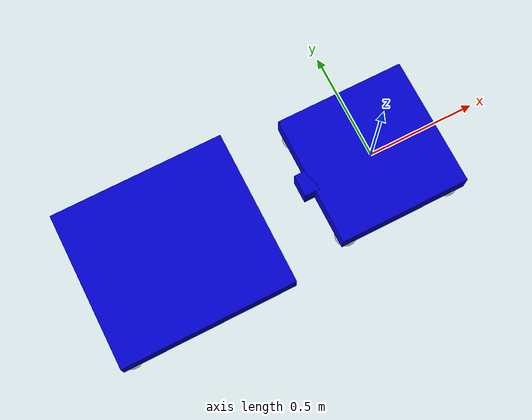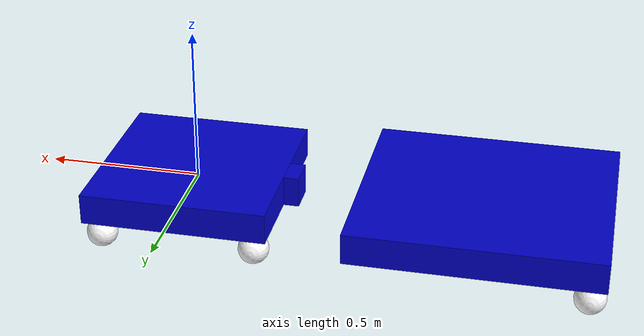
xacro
<?xml version="1.0"?>
<robot xmlns:xacro="http://www.ros.org/wiki/xacro" name="robot_trailer">

    <material name='blue'>
	<color rgba="0. 0. 0.8 1" />
    </material>

    <material name='white'>
	<color rgba="1. 1. 1. 1" />
    </material>

    <xacro:property name="namespace" value="$(arg namespace)"/>
    <xacro:arg name="namespace" default="ropod"/>

    <!-- Degree-to-radian conversions -->
    <xacro:property name="degrees_45" value="0.785398163"/>
    <xacro:property name="degrees_90" value="1.57079633"/>
    <xacro:property name="degrees_180" value="3.14159265"/>

    <!-- Inertia Generator -->
    <xacro:macro name="default_inertial" params="mass inertia">
        <inertial>
            <mass value="${mass}" />
            <inertia ixx="${inertia}" ixy="0.0" ixz="0.0" iyy="${inertia}" iyz="0.0" izz="${inertia}" />
        </inertial>
    </xacro:macro>

    <!-- Basic Geometry of Body -->
    <xacro:property name="body_length" value="0.6" />
    <xacro:property name="body_width" value="0.6" />
    <xacro:property name="body_height" value="0.1" />
    <xacro:property name="body_mass" value="15"/>

    <!-- Basic Geometry of Trailer -->
    <xacro:property name="trailer_length" value="0.8" />
    <xacro:property name="trailer_width" value="0.72" />
    <xacro:property name="trailer_height" value="0.1" />
    <xacro:property name="trailer_mass" value="2"/>

    <!-- Front Wheel Properties -->
    <xacro:property name="front_wheel_width" value="0.02" />
    <xacro:property name="front_wheel_diameter" value="0.1" />
    <xacro:property name="front_wheel_mass" value="4"/>

    <!-- Steering Link Properties -->
    <xacro:property name="steering_width" value="${front_wheel_width/4}" />
    <xacro:property name="steering_diameter" value="${front_wheel_diameter/5}" />
    <xacro:property name="steering_mass" value="0.01"/>

    <!-- Rear Wheel Properties -->
    <xacro:property name="rear_wheel_width" value="${front_wheel_width+steering_width}" />
    <xacro:property name="rear_wheel_diameter" value="0.1" />
    <xacro:property name="rear_wheel_mass" value="4"/>

    <!-- Trailer Wheel Properties -->
    <xacro:property name="trailer_wheel_width" value="0.02" />
    <xacro:property name="trailer_wheel_diameter" value="0.1" />
    <xacro:property name="trailer_wheel_mass" value="0.1"/>

    <!-- Base Link -->
    <link name="base_link">
        <visual>
            <geometry>
                <box size="${body_length} ${body_width} ${body_height}"/>
            </geometry>
            <material name="blue" />
        </visual>
        <collision>
            <geometry>
                <box size="${body_length} ${body_width} ${body_height}"/>
            </geometry>
        </collision>
        <xacro:default_inertial mass="${body_mass}" inertia="2.0"/>
    </link>

    <!-- Front Wheel Macro -->
    <xacro:macro name="front_wheel_link" params="prefix reflect">

        <link name="${prefix}_front_wheel">
            <visual>
                <origin xyz="0.0 0.0 0.0" rpy="${degrees_90} 0.0 0.0"/>
                <geometry>
                    <sphere radius="${trailer_wheel_diameter/2}"/>
                </geometry>
            <material name="white" />
            </visual>
            <collision>
                <origin xyz="0.0 0.0 0.0" rpy="${degrees_90} 0.0 0.0"/>
                <geometry>
                    <sphere radius="${trailer_wheel_diameter/2}"/>
                </geometry>
            </collision>
            <xacro:default_inertial mass="${front_wheel_mass}" inertia="2.0"/>
        </link>

        <joint name="${prefix}_front_axle" type="fixed">
            <parent link="base_link"/>
            <child link="${prefix}_front_wheel"/>
            <origin xyz="${(body_length/2)-(front_wheel_diameter/2)} ${((body_width/2)-(front_wheel_diameter/2))*reflect} ${-(body_height/2)-(front_wheel_diameter/2)}"/>
        </joint>

    </xacro:macro>

    <!-- Rear Wheel Macro -->
    <xacro:macro name="rear_wheel_link" params="prefix reflect">

        <link name="${prefix}_rear_wheel">
            <visual>
                <origin xyz="0.0 0.0 0.0" rpy="${degrees_90} 0.0 0.0"/>
                <geometry>
                    <sphere radius="${trailer_wheel_diameter/2}"/>
                </geometry>
            <material name="white" />
            </visual>
            <collision>
                <origin xyz="0.0 0.0 0.0" rpy="${degrees_90} 0.0 0.0"/>
                <geometry>
                    <sphere radius="${trailer_wheel_diameter/2}"/>
                </geometry>
            </collision>
            <xacro:default_inertial mass="${rear_wheel_mass}" inertia="2.0"/>
        </link>

        <joint name="${prefix}_rear_axle" type="fixed">
            <parent link="base_link"/>
            <child link="${prefix}_rear_wheel"/>
            <origin xyz="${-(body_length/2)+(front_wheel_diameter/2)} ${((body_width/2)-(front_wheel_diameter/2))*reflect} ${-(body_height/2)-(front_wheel_diameter/2)}"/>
        </joint>

    </xacro:macro>

    <xacro:front_wheel_link prefix="left" reflect="1" />
    <xacro:front_wheel_link prefix="right" reflect="-1" />

    <xacro:rear_wheel_link prefix="left" reflect="1" />
    <xacro:rear_wheel_link prefix="right" reflect="-1" />

    <!-- Trailer Link -->
    <link name="trailer_link">
        <visual>
	    <origin xyz="${-trailer_length/2 - 0.25} 0 0" rpy="0 0 0" />
            <geometry>
                <box size="${trailer_length} ${trailer_width} ${trailer_height}"/>
            </geometry>
            <material name="blue" />
        </visual>
        <collision>
	    <origin xyz="${-trailer_length/2 - 0.25} 0 0" rpy="0 0 0" />
            <geometry>
                <box size="${trailer_length} ${trailer_width} ${trailer_height}"/>
            </geometry>
        </collision>
        <xacro:default_inertial mass="${trailer_mass}" inertia=".2"/>
    </link>

    <xacro:macro name="trailer_wheel_link" params="prefix reflect">
	<link name="${prefix}_trailer_wheel">
	    <visual>
	        <origin xyz="0.0 0.0 0.0" rpy="${degrees_90} 0.0 0.0"/>
	        <geometry>
	            <sphere radius="${trailer_wheel_diameter/2}"/>
	        </geometry>
    		<material name="white" />
	    </visual>
	    <collision>
	        <origin xyz="0.0 0.0 0.0" rpy="${degrees_90} 0.0 0.0"/>
	        <geometry>
	            <sphere radius="${trailer_wheel_diameter/2}"/>
	        </geometry>
	    </collision>
	    <xacro:default_inertial mass="${trailer_wheel_mass}" inertia=".1"/>
	</link>

	<joint name="${prefix}_trailer_axle" type="fixed">
	    <parent link="trailer_link"/>
	    <child link="${prefix}_trailer_wheel"/>
	    <origin xyz="${-(trailer_length)-0.25+(trailer_wheel_diameter/2)} ${((trailer_width/2)-(trailer_wheel_diameter/2))*reflect} ${-(trailer_height/2)-(trailer_wheel_diameter/2)}"/>
	</joint>
    </xacro:macro>

    <xacro:trailer_wheel_link prefix="left" reflect="1" />
    <xacro:trailer_wheel_link prefix="right" reflect="-1" />

	<!-- Pivot Link -->
	    <link name="pivot">
		<visual>
		    <geometry>
		        <box size="0.1 0.1 0.1"/>
		    </geometry>
		    <material name="blue" />
		</visual>
		<collision>
		    <geometry>
		        <box size="0.1 0.1 0.1"/>
		    </geometry>
		</collision>
	    </link>

        <joint name="pivot_joint" type="fixed">
            <parent link="base_link"/>
            <child link="pivot"/>
            <origin xyz="${-body_length/2} 0. 0."/>
        </joint>

        <joint name="trailer_pivot" type="revolute">
            <parent link="pivot"/>
            <child link="trailer_link"/>
            <axis xyz="0 0 -1"/>
            <origin xyz="0. 0. 0."/>
	    <limit lower="${-degrees_90}" upper="${degrees_90}" effort="10" velocity="100"/>
	    <dynamics damping="0.3" friction="0.05"/>
        </joint>

</robot>
